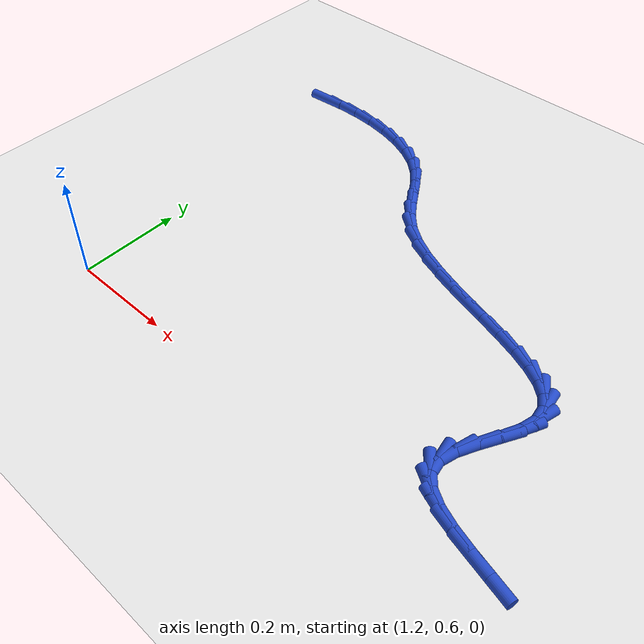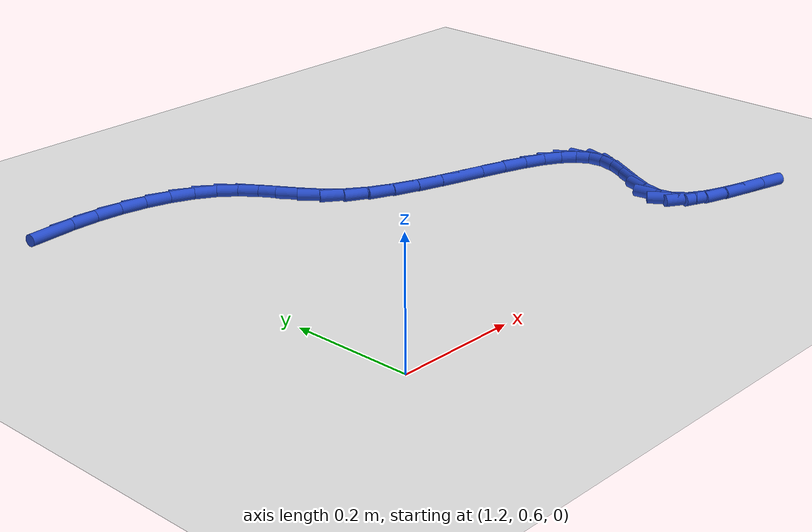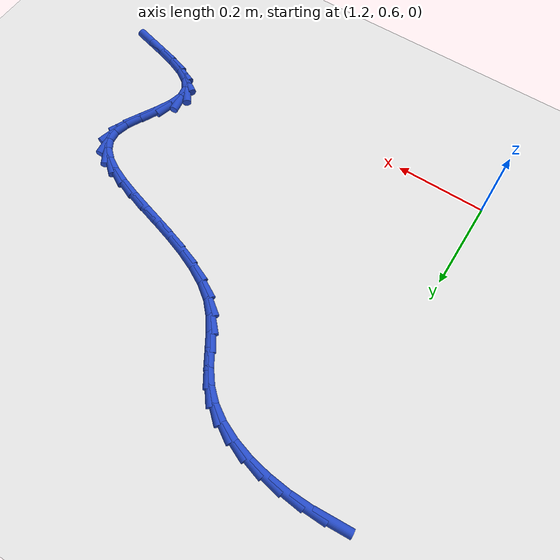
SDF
<sdf version="1.6">
 <world name="default">
  <model name="ground_plane">
   <static>1</static>
   <link name="link">
    <collision name="collision">
     <geometry><plane><normal>0 0 1</normal><size>100 100</size></plane></geometry>
     <surface><friction><ode><mu>100</mu><mu2>50</mu2></ode></friction></surface>
    </collision>
    <visual name="visual">
     <cast_shadows>0</cast_shadows>
     <geometry><plane><normal>0 0 1</normal><size>100 100</size></plane></geometry>
     <material>
      <script><uri>file://media/materials/scripts/gazebo.material</uri><name>Gazebo/WhiteGlow</name></script>
     </material>
    </visual>
   </link>
  </model>
  <model name="line">
   <link name="link_53">
    <pose>1.1526046113919635 1.3082917900001034 0.01 0 1.57 0.07629787171832753</pose>
    <collision name="collision">
     <geometry><cylinder><radius>0.01</radius><length>0.08</length></cylinder></geometry>
    </collision>
    <visual name="visual">
     <material>
      <script><name>Gazebo/Blue</name><uri>file://media/materials/scripts/gazebo.material</uri></script>
     </material>
     <geometry><cylinder><radius>0.01</radius><length>0.08</length></cylinder></geometry>
    </visual>
   </link>
   <link name="link_54">
    <pose>1.1989122621702508 1.3118318371686541 0.01 0 1.57 -0.0015881905788877727</pose>
    <collision name="collision">
     <geometry><cylinder><radius>0.01</radius><length>0.08</length></cylinder></geometry>
    </collision>
    <visual name="visual">
     <material>
      <script><name>Gazebo/Blue</name><uri>file://media/materials/scripts/gazebo.material</uri></script>
     </material>
     <geometry><cylinder><radius>0.01</radius><length>0.08</length></cylinder></geometry>
    </visual>
   </link>
   <link name="link_55">
    <pose>1.2449610807497025 1.3117587028073272 0.01 0 1.57 -0.0838449585973191</pose>
    <collision name="collision">
     <geometry><cylinder><radius>0.01</radius><length>0.08</length></cylinder></geometry>
    </collision>
    <visual name="visual">
     <material>
      <script><name>Gazebo/Blue</name><uri>file://media/materials/scripts/gazebo.material</uri></script>
     </material>
     <geometry><cylinder><radius>0.01</radius><length>0.08</length></cylinder></geometry>
    </visual>
   </link>
   <link name="link_56">
    <pose>1.2899004237931302 1.3079819110467024 0.01 0 1.57 -0.17436431548379694</pose>
    <collision name="collision">
     <geometry><cylinder><radius>0.01</radius><length>0.08</length></cylinder></geometry>
    </collision>
    <visual name="visual">
     <material>
      <script><name>Gazebo/Blue</name><uri>file://media/materials/scripts/gazebo.material</uri></script>
     </material>
     <geometry><cylinder><radius>0.01</radius><length>0.08</length></cylinder></geometry>
    </visual>
   </link>
   <link name="link_57">
    <pose>1.3328796479633491 1.3004109860173598 0.01 0 1.57 -0.27781235396920373</pose>
    <collision name="collision">
     <geometry><cylinder><radius>0.01</radius><length>0.08</length></cylinder></geometry>
    </collision>
    <visual name="visual">
     <material>
      <script><name>Gazebo/Blue</name><uri>file://media/materials/scripts/gazebo.material</uri></script>
     </material>
     <geometry><cylinder><radius>0.01</radius><length>0.08</length></cylinder></geometry>
    </visual>
   </link>
   <link name="link_58">
    <pose>1.3730481099231708 1.288955451849881 0.01 0 1.57 -0.3998996837076831</pose>
    <collision name="collision">
     <geometry><cylinder><radius>0.01</radius><length>0.08</length></cylinder></geometry>
    </collision>
    <visual name="visual">
     <material>
      <script><name>Gazebo/Blue</name><uri>file://media/materials/scripts/gazebo.material</uri></script>
     </material>
     <geometry><cylinder><radius>0.01</radius><length>0.08</length></cylinder></geometry>
    </visual>
   </link>
   <link name="link_59">
    <pose>1.4095551663354096 1.2735248326748456 0.01 0 1.57 -0.5472666567409499</pose>
    <collision name="collision">
     <geometry><cylinder><radius>0.01</radius><length>0.08</length></cylinder></geometry>
    </collision>
    <visual name="visual">
     <material>
      <script><name>Gazebo/Blue</name><uri>file://media/materials/scripts/gazebo.material</uri></script>
     </material>
     <geometry><cylinder><radius>0.01</radius><length>0.08</length></cylinder></geometry>
    </visual>
   </link>
   <link name="link_60">
    <pose>1.4415501738628773 1.2540286526228344 0.01 0 1.57 -0.7255798642377025</pose>
    <collision name="collision">
     <geometry><cylinder><radius>0.01</radius><length>0.08</length></cylinder></geometry>
    </collision>
    <visual name="visual">
     <material>
      <script><name>Gazebo/Blue</name><uri>file://media/materials/scripts/gazebo.material</uri></script>
     </material>
     <geometry><cylinder><radius>0.01</radius><length>0.08</length></cylinder></geometry>
    </visual>
   </link>
   <link name="link_61">
    <pose>1.4682036106717167 1.2303873548578907 0.01 0 1.57 -0.8983669218169948</pose>
    <collision name="collision">
     <geometry><cylinder><radius>0.01</radius><length>0.08</length></cylinder></geometry>
    </collision>
    <visual name="visual">
     <material>
      <script><name>Gazebo/Blue</name><uri>file://media/materials/scripts/gazebo.material</uri></script>
     </material>
     <geometry><cylinder><radius>0.01</radius><length>0.08</length></cylinder></geometry>
    </visual>
   </link>
   <link name="link_62">
    <pose>1.4898937854657486 1.2031457861129788 0.01 0 1.57 -0.9975713345431633</pose>
    <collision name="collision">
     <geometry><cylinder><radius>0.01</radius><length>0.08</length></cylinder></geometry>
    </collision>
    <visual name="visual">
     <material>
      <script><name>Gazebo/Blue</name><uri>file://media/materials/scripts/gazebo.material</uri></script>
     </material>
     <geometry><cylinder><radius>0.01</radius><length>0.08</length></cylinder></geometry>
    </visual>
   </link>
   <link name="link_63">
    <pose>1.5088377325551274 1.1737993460298015 0.01 0 1.57 -1.0146920540075322</pose>
    <collision name="collision">
     <geometry><cylinder><radius>0.01</radius><length>0.08</length></cylinder></geometry>
    </collision>
    <visual name="visual">
     <material>
      <script><name>Gazebo/Blue</name><uri>file://media/materials/scripts/gazebo.material</uri></script>
     </material>
     <geometry><cylinder><radius>0.01</radius><length>0.08</length></cylinder></geometry>
    </visual>
   </link>
   <link name="link_64">
    <pose>1.5274068145716095 1.1439232162656576 0.01 0 1.57 -0.9511840860194475</pose>
    <collision name="collision">
     <geometry><cylinder><radius>0.01</radius><length>0.08</length></cylinder></geometry>
    </collision>
    <visual name="visual">
     <material>
      <script><name>Gazebo/Blue</name><uri>file://media/materials/scripts/gazebo.material</uri></script>
     </material>
     <geometry><cylinder><radius>0.01</radius><length>0.08</length></cylinder></geometry>
    </visual>
   </link>
   <link name="link_65">
    <pose>1.5479723941469505 1.1150925784778454 0.01 0 1.57 -0.8103622688936618</pose>
    <collision name="collision">
     <geometry><cylinder><radius>0.01</radius><length>0.08</length></cylinder></geometry>
    </collision>
    <visual name="visual">
     <material>
      <script><name>Gazebo/Blue</name><uri>file://media/materials/scripts/gazebo.material</uri></script>
     </material>
     <geometry><cylinder><radius>0.01</radius><length>0.08</length></cylinder></geometry>
    </visual>
   </link>
   <link name="link_66">
    <pose>1.5729055293670693 1.0888824316782764 0.01 0 1.57 -0.6290478197523717</pose>
    <collision name="collision">
     <geometry><cylinder><radius>0.01</radius><length>0.08</length></cylinder></geometry>
    </collision>
    <visual name="visual">
     <material>
      <script><name>Gazebo/Blue</name><uri>file://media/materials/scripts/gazebo.material</uri></script>
     </material>
     <geometry><cylinder><radius>0.01</radius><length>0.08</length></cylinder></geometry>
    </visual>
   </link>
   <link name="link_67">
    <pose>1.6038001693990729 1.0664017190601867 0.01 0 1.57 -0.488207788068272</pose>
    <collision name="collision">
     <geometry><cylinder><radius>0.01</radius><length>0.08</length></cylinder></geometry>
    </collision>
    <visual name="visual">
     <material>
      <script><name>Gazebo/Blue</name><uri>file://media/materials/scripts/gazebo.material</uri></script>
     </material>
     <geometry><cylinder><radius>0.01</radius><length>0.08</length></cylinder></geometry>
    </visual>
   </link>
   <link name="link_68">
    <pose>1.6397935850909031 1.0472860392218066 0.01 0 1.57 -0.3914636212559159</pose>
    <collision name="collision">
     <geometry><cylinder><radius>0.01</radius><length>0.08</length></cylinder></geometry>
    </collision>
    <visual name="visual">
     <material>
      <script><name>Gazebo/Blue</name><uri>file://media/materials/scripts/gazebo.material</uri></script>
     </material>
     <geometry><cylinder><radius>0.01</radius><length>0.08</length></cylinder></geometry>
    </visual>
   </link>
   <link name="link_69">
    <pose>1.6795387588245427 1.0308805482609498 0.01 0 1.57 -0.32814623787620967</pose>
    <collision name="collision">
     <geometry><cylinder><radius>0.01</radius><length>0.08</length></cylinder></geometry>
    </collision>
    <visual name="visual">
     <material>
      <script><name>Gazebo/Blue</name><uri>file://media/materials/scripts/gazebo.material</uri></script>
     </material>
     <geometry><cylinder><radius>0.01</radius><length>0.08</length></cylinder></geometry>
    </visual>
   </link>
   <link name="link_70">
    <pose>1.7216886729819731 1.0165304022754262 0.01 0 1.57 -0.29118825557874933</pose>
    <collision name="collision">
     <geometry><cylinder><radius>0.01</radius><length>0.08</length></cylinder></geometry>
    </collision>
    <visual name="visual">
     <material>
      <script><name>Gazebo/Blue</name><uri>file://media/materials/scripts/gazebo.material</uri></script>
     </material>
     <geometry><cylinder><radius>0.01</radius><length>0.08</length></cylinder></geometry>
    </visual>
   </link>
   <link name="link_71">
    <pose>1.7648963099451769 1.0035807573630493 0.01 0 1.57 -0.277041271911529</pose>
    <collision name="collision">
     <geometry><cylinder><radius>0.01</radius><length>0.08</length></cylinder></geometry>
    </collision>
    <visual name="visual">
     <material>
      <script><name>Gazebo/Blue</name><uri>file://media/materials/scripts/gazebo.material</uri></script>
     </material>
     <geometry><cylinder><radius>0.01</radius><length>0.08</length></cylinder></geometry>
    </visual>
   </link>
   <link name="link_72">
    <pose>1.8078146520961356 0.9913767696216298 0.01 0 1.57 -0.2854137085444058</pose>
    <collision name="collision">
     <geometry><cylinder><radius>0.01</radius><length>0.08</length></cylinder></geometry>
    </collision>
    <visual name="visual">
     <material>
      <script><name>Gazebo/Blue</name><uri>file://media/materials/scripts/gazebo.material</uri></script>
     </material>
     <geometry><cylinder><radius>0.01</radius><length>0.08</length></cylinder></geometry>
    </visual>
   </link>
   <link name="link_73">
    <pose>1.8490966818168313 0.9792635951489799 0.01 0 1.57 -0.31965698187509173</pose>
    <collision name="collision">
     <geometry><cylinder><radius>0.01</radius><length>0.08</length></cylinder></geometry>
    </collision>
    <visual name="visual">
     <material>
      <script><name>Gazebo/Blue</name><uri>file://media/materials/scripts/gazebo.material</uri></script>
     </material>
     <geometry><cylinder><radius>0.01</radius><length>0.08</length></cylinder></geometry>
    </visual>
   </link>
   <link name="link_74">
    <pose>1.8873953814892466 0.9665863900429116 0.01 0 1.57 -0.38831709507596657</pose>
    <collision name="collision">
     <geometry><cylinder><radius>0.01</radius><length>0.08</length></cylinder></geometry>
    </collision>
    <visual name="visual">
     <material>
      <script><name>Gazebo/Blue</name><uri>file://media/materials/scripts/gazebo.material</uri></script>
     </material>
     <geometry><cylinder><radius>0.01</radius><length>0.08</length></cylinder></geometry>
    </visual>
   </link>
   <link name="link_75">
    <pose>1.9213637334953628 0.9526903104012365 0.01 0 1.57 -0.508517677961445</pose>
    <collision name="collision">
     <geometry><cylinder><radius>0.01</radius><length>0.08</length></cylinder></geometry>
    </collision>
    <visual name="visual">
     <material>
      <script><name>Gazebo/Blue</name><uri>file://media/materials/scripts/gazebo.material</uri></script>
     </material>
     <geometry><cylinder><radius>0.01</radius><length>0.08</length></cylinder></geometry>
    </visual>
   </link>
   <link name="link_76">
    <pose>1.9496547202171624 0.9369205123217662 0.01 0 1.57 -0.7105164223712862</pose>
    <collision name="collision">
     <geometry><cylinder><radius>0.01</radius><length>0.08</length></cylinder></geometry>
    </collision>
    <visual name="visual">
     <material>
      <script><name>Gazebo/Blue</name><uri>file://media/materials/scripts/gazebo.material</uri></script>
     </material>
     <geometry><cylinder><radius>0.01</radius><length>0.08</length></cylinder></geometry>
    </visual>
   </link>
   <link name="link_77">
    <pose>1.970921324036627 0.9186221519023129 0.01 0 1.57 -1.030166575473306</pose>
    <collision name="collision">
     <geometry><cylinder><radius>0.01</radius><length>0.08</length></cylinder></geometry>
    </collision>
    <visual name="visual">
     <material>
      <script><name>Gazebo/Blue</name><uri>file://media/materials/scripts/gazebo.material</uri></script>
     </material>
     <geometry><cylinder><radius>0.01</radius><length>0.08</length></cylinder></geometry>
    </visual>
   </link>
   <link name="link_78">
    <pose>1.9838165273357387 0.8971403852406877 0.01 0 1.57 -1.4459831525809734</pose>
    <collision name="collision">
     <geometry><cylinder><radius>0.01</radius><length>0.08</length></cylinder></geometry>
    </collision>
    <visual name="visual">
     <material>
      <script><name>Gazebo/Blue</name><uri>file://media/materials/scripts/gazebo.material</uri></script>
     </material>
     <geometry><cylinder><radius>0.01</radius><length>0.08</length></cylinder></geometry>
    </visual>
   </link>
   <link name="link_79">
    <pose>1.9869933124964798 0.8718203684347039 0.01 0 1.57 1.3187282198417174</pose>
    <collision name="collision">
     <geometry><cylinder><radius>0.01</radius><length>0.08</length></cylinder></geometry>
    </collision>
    <visual name="visual">
     <material>
      <script><name>Gazebo/Blue</name><uri>file://media/materials/scripts/gazebo.material</uri></script>
     </material>
     <geometry><cylinder><radius>0.01</radius><length>0.08</length></cylinder></geometry>
    </visual>
   </link>
   <link name="link_80">
    <pose>1.9793408294083443 0.842107299489491 0.01 0 1.57 1.121844095859686</pose>
    <collision name="collision">
     <geometry><cylinder><radius>0.01</radius><length>0.08</length></cylinder></geometry>
    </collision>
    <visual name="visual">
     <material>
      <script><name>Gazebo/Blue</name><uri>file://media/materials/scripts/gazebo.material</uri></script>
     </material>
     <geometry><cylinder><radius>0.01</radius><length>0.08</length></cylinder></geometry>
    </visual>
   </link>
   <link name="link_81">
    <pose>1.9633845570261506 0.8089867462060483 0.01 0 1.57 1.0679935827709175</pose>
    <collision name="collision">
     <geometry><cylinder><radius>0.01</radius><length>0.08</length></cylinder></geometry>
    </collision>
    <visual name="visual">
     <material>
      <script><name>Gazebo/Blue</name><uri>file://media/materials/scripts/gazebo.material</uri></script>
     </material>
     <geometry><cylinder><radius>0.01</radius><length>0.08</length></cylinder></geometry>
    </visual>
   </link>
   <link name="link_82">
    <pose>1.9445026286565728 0.774652677089134 0.01 0 1.57 1.114562967628173</pose>
    <collision name="collision">
     <geometry><cylinder><radius>0.01</radius><length>0.08</length></cylinder></geometry>
    </collision>
    <visual name="visual">
     <material>
      <script><name>Gazebo/Blue</name><uri>file://media/materials/scripts/gazebo.material</uri></script>
     </material>
     <geometry><cylinder><radius>0.01</radius><length>0.08</length></cylinder></geometry>
    </visual>
   </link>
   <link name="link_83">
    <pose>1.9281497098015492 0.7413314801192689 0.01 0 1.57 1.29944368815858</pose>
    <collision name="collision">
     <geometry><cylinder><radius>0.01</radius><length>0.08</length></cylinder></geometry>
    </collision>
    <visual name="visual">
     <material>
      <script><name>Gazebo/Blue</name><uri>file://media/materials/scripts/gazebo.material</uri></script>
     </material>
     <geometry><cylinder><radius>0.01</radius><length>0.08</length></cylinder></geometry>
    </visual>
   </link>
   <link name="link_84">
    <pose>1.9197804659630155 0.7112495432769732 0.01 0 1.57 -1.4035549336374058</pose>
    <collision name="collision">
     <geometry><cylinder><radius>0.01</radius><length>0.08</length></cylinder></geometry>
    </collision>
    <visual name="visual">
     <material>
      <script><name>Gazebo/Blue</name><uri>file://media/materials/scripts/gazebo.material</uri></script>
     </material>
     <geometry><cylinder><radius>0.01</radius><length>0.08</length></cylinder></geometry>
    </visual>
   </link>
   <link name="link_85">
    <pose>1.9239963890344016 0.6862763982108475 0.01 0 1.57 -0.8879145424060988</pose>
    <collision name="collision">
     <geometry><cylinder><radius>0.01</radius><length>0.08</length></cylinder></geometry>
    </collision>
    <visual name="visual">
     <material>
      <script><name>Gazebo/Blue</name><uri>file://media/materials/scripts/gazebo.material</uri></script>
     </material>
     <geometry><cylinder><radius>0.01</radius><length>0.08</length></cylinder></geometry>
    </visual>
   </link>
   <link name="link_86">
    <pose>1.9403514320334596 0.6661703459941016 0.01 0 1.57 -0.5553005589499306</pose>
    <collision name="collision">
     <geometry><cylinder><radius>0.01</radius><length>0.08</length></cylinder></geometry>
    </collision>
    <visual name="visual">
     <material>
      <script><name>Gazebo/Blue</name><uri>file://media/materials/scripts/gazebo.material</uri></script>
     </material>
     <geometry><cylinder><radius>0.01</radius><length>0.08</length></cylinder></geometry>
    </visual>
   </link>
   <link name="link_87">
    <pose>1.9665500935626836 0.6499161176878157 0.01 0 1.57 -0.3784927383929941</pose>
    <collision name="collision">
     <geometry><cylinder><radius>0.01</radius><length>0.08</length></cylinder></geometry>
    </collision>
    <visual name="visual">
     <material>
      <script><name>Gazebo/Blue</name><uri>file://media/materials/scripts/gazebo.material</uri></script>
     </material>
     <geometry><cylinder><radius>0.01</radius><length>0.08</length></cylinder></geometry>
    </visual>
   </link>
   <link name="link_88">
    <pose>2.000294083973882 0.6364972781133947 0.01 0 1.57 -0.2891629301492175</pose>
    <collision name="collision">
     <geometry><cylinder><radius>0.01</radius><length>0.08</length></cylinder></geometry>
    </collision>
    <visual name="visual">
     <material>
      <script><name>Gazebo/Blue</name><uri>file://media/materials/scripts/gazebo.material</uri></script>
     </material>
     <geometry><cylinder><radius>0.01</radius><length>0.08</length></cylinder></geometry>
    </visual>
   </link>
   <link name="link_89">
    <pose>2.039285113618862 0.6248973920922425 0.01 0 1.57 -0.2519774061520634</pose>
    <collision name="collision">
     <geometry><cylinder><radius>0.01</radius><length>0.08</length></cylinder></geometry>
    </collision>
    <visual name="visual">
     <material>
      <script><name>Gazebo/Blue</name><uri>file://media/materials/scripts/gazebo.material</uri></script>
     </material>
     <geometry><cylinder><radius>0.01</radius><length>0.08</length></cylinder></geometry>
    </visual>
   </link>
   <link name="link_90">
    <pose>2.0812248928494324 0.6141000244457644 0.01 0 1.57 -0.25300010797440114</pose>
    <collision name="collision">
     <geometry><cylinder><radius>0.01</radius><length>0.08</length></cylinder></geometry>
    </collision>
    <visual name="visual">
     <material>
      <script><name>Gazebo/Blue</name><uri>file://media/materials/scripts/gazebo.material</uri></script>
     </material>
     <geometry><cylinder><radius>0.01</radius><length>0.08</length></cylinder></geometry>
    </visual>
   </link>
  </model>
 </world>
</sdf>
